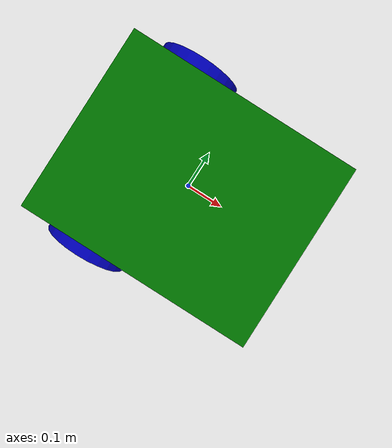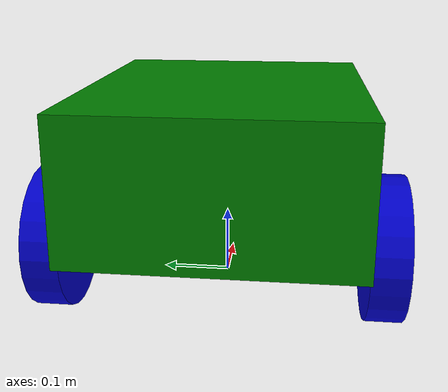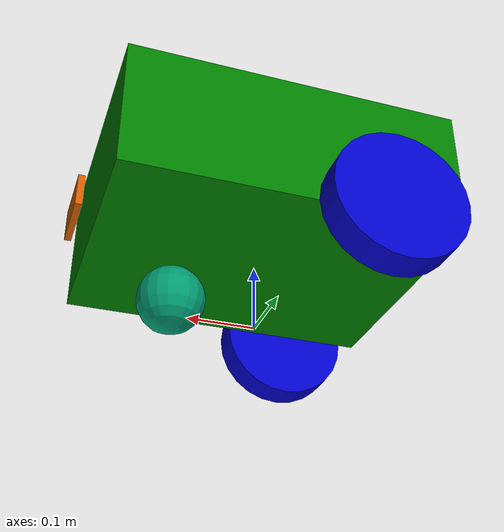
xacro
<?xml version="1.0"?>
<robot name="my_robot" xmlns:xacro = "http://www.ros.rog/wiki/xacro">

    <xacro:include filename = "common_properties.xacro"/>
    <xacro:include filename = "base_and_links.xacro"/>
    <xacro:include filename = "mobile_base_gazebo.xacro"/>
    <xacro:include filename = "camera.xacro"/>

</robot>

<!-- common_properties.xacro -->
<robot xmlns:xacro = "http://www.ros.rog/wiki/xacro">

    <material name="green"><color rgba="0 0.5 0 1"/> </material>
    <material name="somethingshit"><color rgba="0 0 0.8 1"></color></material>
    <material name="caster_wheel"><color rgba="1 0 0 1"></color></material>

    <xacro:macro name = "box_inertia" params = "m x y z o_xyz o_rpy">

        <inertial>
                <mass value = "${m}"/>
                <origin xyz = "${o_xyz}" rpy = "${o_rpy}"/>
                <inertia ixx = "${(m / 12) * (y*y + z*z)}" ixy = "0" ixz = "0"
                            iyy = "${(m / 12) * (x*x + z*z)}" iyz = "0"
                            izz = "${(m / 12) * (x*x + y*y)}" />
        </inertial>

    </xacro:macro>

</robot>

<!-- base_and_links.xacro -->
<robot xmlns:xacro = "http://www.ros.rog/wiki/xacro">

        <xacro:property name = "base_length" value = "0.5"/>

        <xacro:macro name = "wheel_link" params = 'prefix'>
            <link name = "${prefix}_wheel_link">
                <visual>
                    <geometry>
                        <cylinder radius="0.1" length = "0.05"/>
                    </geometry>
                    <origin xyz="0 0 0" rpy="${pi / 2.0} 0 0"/>
                    <material name="somethingshit"></material>
                </visual>
                <collision>
                    <geometry>
                        <sphere radius = "0.1"></sphere>

                    </geometry>
                    <origin xyz="0 0 0" rpy="0 0 0"/>
                </collision>

                <xacro:wheel_inertia m = "0.2" r = "0.1" h = "0.05" o_xyz = "0 0 0" o_rpy = "${pi} 0 0"/>

            </link>

        </xacro:macro>

        <link name = "base_footprint"/>

        <link name="base_link">
                <visual>
                    <geometry>
                        <box size="${base_length} 0.4 0.2" />
                    </geometry>

                    <origin xyz="0 0 0.1" rpy="0 0 0" />
                    <material name="green"></material>
                </visual>
                <collision>
                    <geometry>
                        <box size="${base_length} 0.4 0.2" />
                    </geometry>

                    <origin xyz="0 0 0.1" rpy="0 0 0" />
                </collision>

                <xacro:box_inertia m = "5.0" x = "0.6" y = "0.4" z = "0.2"
                                    o_xyz = "0 0 0.1" o_rpy = "0 0 0"/>

            </link>

            <link name="caster_wheel">
                <visual>
                    <geometry>
                        <sphere radius = "0.05"/>
                        <material name="caster_wheel"/>
                    </geometry>
                </visual>
                <collision>
                    <geometry>
                        <sphere radius = "0.05"/>
                        <material name="caster_wheel"/>
                    </geometry>
                    <origin xyz="0 0 0" rpy="0 0 0" />

                </collision>
                <xacro:castor_wheel_inertia m = "1.5" r = "0.05"
                                    o_xyz = "0 0 -0.075" o_rpy = "0 0 0"/>

            </link>

            <xacro:wheel_link prefix = 'left'></xacro:wheel_link>
            <xacro:wheel_link prefix = 'right'></xacro:wheel_link>

            <joint name="base_right_wheel_joint" type="continuous">
                <origin xyz = "${-base_length / 4} -0.225 0" rpy = "${pi} 0 0"/>
                <parent link="base_link"/>
                <child link="right_wheel_link"/>
                <axis xyz="0 1 0"/>
            </joint>

            <joint name="base_left_wheel_joint" type="continuous">
                <origin xyz = "${-base_length / 4} 0.225 0" rpy = "${pi} 0 0"/>
                <parent link="base_link"/>
                <child link="left_wheel_link"/>
                <axis xyz="0 1 0"/>
            </joint>

            <joint name = "base_caster_joint" type = "fixed">
                <origin xyz = "${base_length / 4} 0 -0.075" rpy = "0 0 0"/>
                <parent link = "base_link"/>
                <child link = "caster_wheel"/>

            </joint>

            <joint name = "base_joint" type = "fixed">
                <parent link = "base_footprint"/>
                <child link = "base_link"/>
                <origin xyz = "0 0 0.1" rpy = "0 0 0"/>
            </joint>

</robot>

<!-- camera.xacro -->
<robot xmlns:xacro = "http://www.ros.rog/wiki/xacro">

    <link name = "camera_link">

        <visual>
            <geometry>
                <box size = "0.01 0.1 0.05"/>
            </geometry>
        </visual>

        <collision>
            <geometry>
                <box size = "0.01 0.1 0.05"/>
            </geometry>
        </collision>
        <xacro:box_inertia m = "0.1" x = "0.01" y = "0.1" z = "0.05" o_xyz = "0 0 0" o_rpy = "0 0 0"/>
    </link>

    <joint name = "base_camera_joint" type = "fixed">
        <parent link = "base_link"/>
        <child link = "camera_link"/>
        <origin xyz = "0.275 0 0.05" rpy = "0 0 0"/>
    </joint>

</robot>
